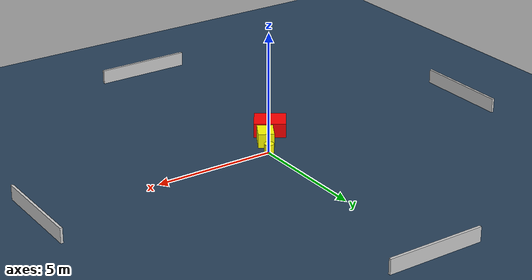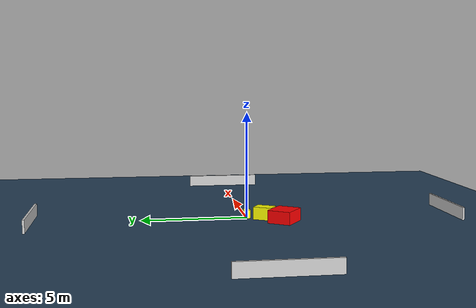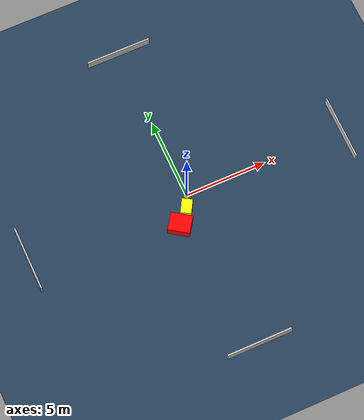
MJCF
<?xml version="1.0" ?>
<mujoco model="generated_environment">
  <option timestep="0.01" integrator="RK4" cone="elliptic"/>
  <default>
    <geom density="1"/>
  </default>
  <asset>
    <texture builtin="gradient" height="3072" name="skybox" rgb1="0.3 0.5 0.7" rgb2="0 0 0" type="skybox" width="512"/>
    <texture builtin="checker" height="300" name="groundplane" rgb1="0.2 0.3 0.4" rgb2="0.1 0.2 0.3" type="2d" width="300"/>
    <material name="groundplane" reflectance="0.2" texrepeat="5 5" texture="groundplane"/>
  </asset>
  <worldbody>
    <light dir="0 0 -1" directional="true" pos="0 0 1.5"/>
    <geom condim="3" friction="0.5 0.005 0.001" material="groundplane" name="floor" pos="0 0 0" size="0 0 0.05" type="plane"/>
    <body name="walls">
      <geom name="wall_1" condim="4" pos="-10.0 0.0 0.3" rgba="0.800000011920929 0.800000011920929 0.800000011920929 1.0" size="0.05 2.0 0.3" type="box"/>
      <geom name="wall_2" condim="4" pos="10.0 0.0 0.3" rgba="0.800000011920929 0.800000011920929 0.800000011920929 1.0" size="0.05 2.0 0.3" type="box"/>
      <geom name="wall_3" condim="4" pos="0.0 -10.0 0.3" rgba="0.800000011920929 0.800000011920929 0.800000011920929 1.0" size="2.0 0.05 0.3" type="box"/>
      <geom name="wall_4" condim="4" pos="0.0 10.0 0.3" rgba="0.800000011920929 0.800000011920929 0.800000011920929 1.0" size="2.0 0.05 0.3" type="box"/>
    </body>
    <body name="robot">
      <joint name="joint_x" type="slide" pos="0 0 0" axis="1 0 0"/>
      <joint name="joint_y" type="slide" pos="0 0 0" axis="0 1 0"/>
      <geom name="robot" type="cylinder" pos="0.0 0.0 0.2" size="0.2 0.2 0.0" mass="5.0" friction="1.0 0.005 0.0001" condim="4" rgba="1.0 1.0 0.0 1.0"/>
    </body>
    <body name="obstacle_1_movable">
      <geom name="obstacle_1_movable" condim="4" pos="-0.37878048131769315 -0.7992358249963895 0.3" euler="0 0 329.9926827133256" friction="0.0 0.005 0.001" rgba="1.0 1.0 0.0 1.0" size="0.32436858900016247 0.4467659934456393 0.3" type="box" mass="0.1"/>
      <joint type="free"/>
    </body>
    <body name="obstacle_2_static">
      <geom name="obstacle_2_static" condim="4" pos="-1.1409295626715508 -1.5972623379870807 0.3" euler="0 0 325.07923833522" friction="0.0 0.005 0.001" rgba="1.0 0.0 0.0 1.0" size="0.6576565467039321 0.5555657484487019 0.3" type="box"/>
    </body>
  </worldbody>
  <actuator>
    <motor name="actuator_x" joint="joint_x" gear="1" ctrlrange="-1 1"/>
    <motor name="actuator_y" joint="joint_y" gear="1" ctrlrange="-1 1"/>
  </actuator>
</mujoco>
